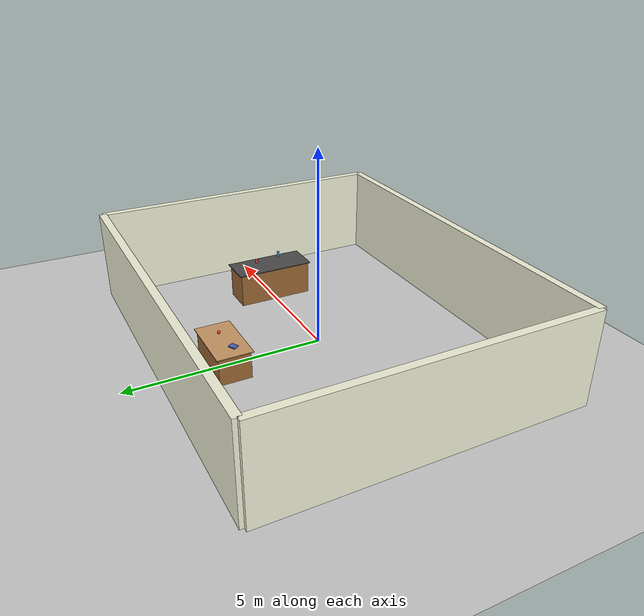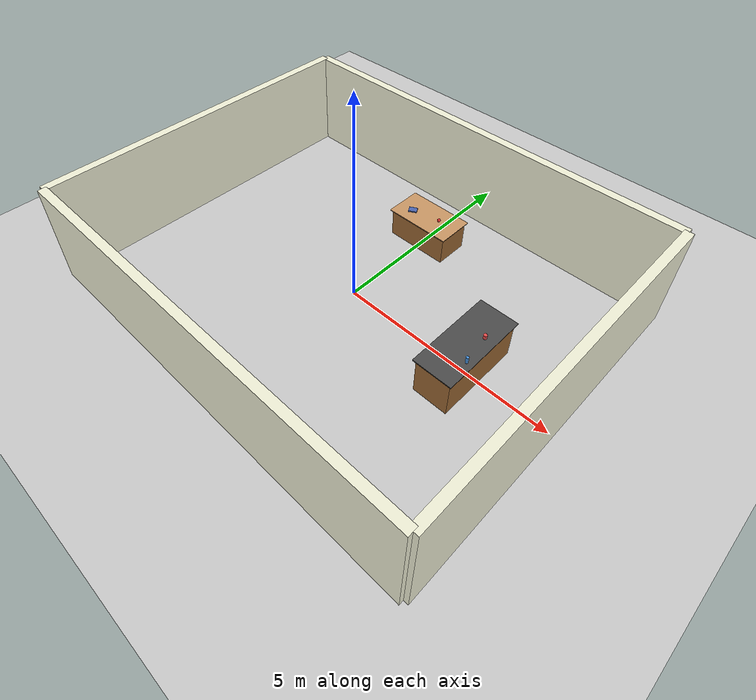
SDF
<?xml version="1.0" ?>
<sdf version="1.6">
  <world name="kitchen_world">

    <!-- Physics -->
    <physics name="default_physics" default="true" type="ode">
      <max_step_size>0.001</max_step_size>
      <real_time_factor>1.0</real_time_factor>
      <real_time_update_rate>1000</real_time_update_rate>
    </physics>

    <!-- Lighting -->
    <light name="sun" type="directional">
      <cast_shadows>true</cast_shadows>
      <pose>0 0 10 0 0 0</pose>
      <diffuse>0.8 0.8 0.8 1</diffuse>
      <specular>0.2 0.2 0.2 1</specular>
      <attenuation>
        <range>1000</range>
        <constant>0.9</constant>
        <linear>0.01</linear>
        <quadratic>0.001</quadratic>
      </attenuation>
      <direction>-0.5 0.1 -0.9</direction>
    </light>

    <!-- Ambient lighting -->
    <light name="ambient_light" type="ambient">
      <diffuse>0.4 0.4 0.4 1</diffuse>
    </light>

    <!-- Ground Plane -->
    <model name="ground_plane">
      <static>true</static>
      <link name="link">
        <collision name="collision">
          <geometry>
            <plane>
              <normal>0 0 1</normal>
              <size>100 100</size>
            </plane>
          </geometry>
          <surface>
            <friction>
              <ode>
                <mu>100</mu>
                <mu2>50</mu2>
              </ode>
            </friction>
          </surface>
        </collision>
        <visual name="visual">
          <geometry>
            <plane>
              <normal>0 0 1</normal>
              <size>100 100</size>
            </plane>
          </geometry>
          <material>
            <ambient>0.8 0.8 0.8 1</ambient>
            <diffuse>0.8 0.8 0.8 1</diffuse>
            <specular>0.8 0.8 0.8 1</specular>
          </material>
        </visual>
      </link>
    </model>

    <!-- Kitchen Counter -->
    <model name="kitchen_counter">
      <static>true</static>
      <pose>3.0 0 0.45 0 0 0</pose>
      <link name="link">
        <collision name="collision">
          <geometry>
            <box>
              <size>0.8 2.0 0.9</size>
            </box>
          </geometry>
        </collision>
        <visual name="visual">
          <geometry>
            <box>
              <size>0.8 2.0 0.9</size>
            </box>
          </geometry>
          <material>
            <ambient>0.6 0.4 0.2 1</ambient>
            <diffuse>0.6 0.4 0.2 1</diffuse>
          </material>
        </visual>
      </link>
    </model>

    <!-- Kitchen Countertop (surface) -->
    <model name="kitchen_countertop">
      <static>true</static>
      <pose>3.0 0 0.91 0 0 0</pose>
      <link name="link">
        <collision name="collision">
          <geometry>
            <box>
              <size>0.9 2.1 0.02</size>
            </box>
          </geometry>
        </collision>
        <visual name="visual">
          <geometry>
            <box>
              <size>0.9 2.1 0.02</size>
            </box>
          </geometry>
          <material>
            <ambient>0.2 0.2 0.2 1</ambient>
            <diffuse>0.3 0.3 0.3 1</diffuse>
          </material>
        </visual>
      </link>
    </model>

    <!-- Table -->
    <model name="table">
      <static>true</static>
      <pose>0 2.5 0.35 0 0 0</pose>
      <link name="link">
        <collision name="collision">
          <geometry>
            <box>
              <size>1.5 0.8 0.7</size>
            </box>
          </geometry>
        </collision>
        <visual name="visual">
          <geometry>
            <box>
              <size>1.5 0.8 0.7</size>
            </box>
          </geometry>
          <material>
            <ambient>0.5 0.3 0.1 1</ambient>
            <diffuse>0.6 0.4 0.2 1</diffuse>
          </material>
        </visual>
      </link>
    </model>

    <!-- Table Surface -->
    <model name="table_surface">
      <static>true</static>
      <pose>0 2.5 0.71 0 0 0</pose>
      <link name="link">
        <collision name="collision">
          <geometry>
            <box>
              <size>1.6 0.9 0.02</size>
            </box>
          </geometry>
        </collision>
        <visual name="visual">
          <geometry>
            <box>
              <size>1.6 0.9 0.02</size>
            </box>
          </geometry>
          <material>
            <ambient>0.7 0.5 0.3 1</ambient>
            <diffuse>0.8 0.6 0.4 1</diffuse>
          </material>
        </visual>
      </link>
    </model>

    <!-- Mug (on kitchen counter) -->
    <model name="mug">
      <pose>3.2 0.3 0.97 0 0 0</pose>
      <link name="link">
        <inertial>
          <mass>0.3</mass>
          <inertia>
            <ixx>0.0001</ixx>
            <iyy>0.0001</iyy>
            <izz>0.0001</izz>
          </inertia>
        </inertial>
        <collision name="collision">
          <geometry>
            <cylinder>
              <radius>0.04</radius>
              <length>0.10</length>
            </cylinder>
          </geometry>
        </collision>
        <visual name="visual">
          <geometry>
            <cylinder>
              <radius>0.04</radius>
              <length>0.10</length>
            </cylinder>
          </geometry>
          <material>
            <ambient>0.8 0.2 0.2 1</ambient>
            <diffuse>0.9 0.3 0.3 1</diffuse>
          </material>
        </visual>
      </link>
    </model>

    <!-- Bottle (on kitchen counter) -->
    <model name="bottle">
      <pose>3.3 -0.4 0.98 0 0 0</pose>
      <link name="link">
        <inertial>
          <mass>0.5</mass>
          <inertia>
            <ixx>0.0002</ixx>
            <iyy>0.0002</iyy>
            <izz>0.0001</izz>
          </inertia>
        </inertial>
        <collision name="collision">
          <geometry>
            <cylinder>
              <radius>0.03</radius>
              <length>0.20</length>
            </cylinder>
          </geometry>
        </collision>
        <visual name="visual">
          <geometry>
            <cylinder>
              <radius>0.03</radius>
              <length>0.20</length>
            </cylinder>
          </geometry>
          <material>
            <ambient>0.2 0.5 0.8 1</ambient>
            <diffuse>0.3 0.6 0.9 1</diffuse>
          </material>
        </visual>
      </link>
    </model>

    <!-- Apple (on table) -->
    <model name="apple">
      <pose>0.3 2.5 0.77 0 0 0</pose>
      <link name="link">
        <inertial>
          <mass>0.2</mass>
          <inertia>
            <ixx>0.00008</ixx>
            <iyy>0.00008</iyy>
            <izz>0.00008</izz>
          </inertia>
        </inertial>
        <collision name="collision">
          <geometry>
            <sphere>
              <radius>0.04</radius>
            </sphere>
          </geometry>
        </collision>
        <visual name="visual">
          <geometry>
            <sphere>
              <radius>0.04</radius>
            </sphere>
          </geometry>
          <material>
            <ambient>0.8 0.1 0.1 1</ambient>
            <diffuse>0.9 0.2 0.2 1</diffuse>
          </material>
        </visual>
      </link>
    </model>

    <!-- Book (on table) -->
    <model name="book">
      <pose>-0.4 2.4 0.74 0 0 0.5</pose>
      <link name="link">
        <inertial>
          <mass>0.5</mass>
          <inertia>
            <ixx>0.0003</ixx>
            <iyy>0.0002</iyy>
            <izz>0.0001</izz>
          </inertia>
        </inertial>
        <collision name="collision">
          <geometry>
            <box>
              <size>0.20 0.15 0.03</size>
            </box>
          </geometry>
        </collision>
        <visual name="visual">
          <geometry>
            <box>
              <size>0.20 0.15 0.03</size>
            </box>
          </geometry>
          <material>
            <ambient>0.2 0.3 0.6 1</ambient>
            <diffuse>0.3 0.4 0.7 1</diffuse>
          </material>
        </visual>
      </link>
    </model>

    <!-- Walls for navigation constraints -->
    <!-- North wall -->
    <model name="wall_north">
      <static>true</static>
      <pose>0 4 1.2 0 0 0</pose>
      <link name="link">
        <collision name="collision">
          <geometry>
            <box>
              <size>10 0.2 2.4</size>
            </box>
          </geometry>
        </collision>
        <visual name="visual">
          <geometry>
            <box>
              <size>10 0.2 2.4</size>
            </box>
          </geometry>
          <material>
            <ambient>0.9 0.9 0.8 1</ambient>
            <diffuse>0.95 0.95 0.85 1</diffuse>
          </material>
        </visual>
      </link>
    </model>

    <!-- South wall -->
    <model name="wall_south">
      <static>true</static>
      <pose>0 -4 1.2 0 0 0</pose>
      <link name="link">
        <collision name="collision">
          <geometry>
            <box>
              <size>10 0.2 2.4</size>
            </box>
          </geometry>
        </collision>
        <visual name="visual">
          <geometry>
            <box>
              <size>10 0.2 2.4</size>
            </box>
          </geometry>
          <material>
            <ambient>0.9 0.9 0.8 1</ambient>
            <diffuse>0.95 0.95 0.85 1</diffuse>
          </material>
        </visual>
      </link>
    </model>

    <!-- East wall -->
    <model name="wall_east">
      <static>true</static>
      <pose>5 0 1.2 0 0 0</pose>
      <link name="link">
        <collision name="collision">
          <geometry>
            <box>
              <size>0.2 8 2.4</size>
            </box>
          </geometry>
        </collision>
        <visual name="visual">
          <geometry>
            <box>
              <size>0.2 8 2.4</size>
            </box>
          </geometry>
          <material>
            <ambient>0.9 0.9 0.8 1</ambient>
            <diffuse>0.95 0.95 0.85 1</diffuse>
          </material>
        </visual>
      </link>
    </model>

    <!-- West wall -->
    <model name="wall_west">
      <static>true</static>
      <pose>-5 0 1.2 0 0 0</pose>
      <link name="link">
        <collision name="collision">
          <geometry>
            <box>
              <size>0.2 8 2.4</size>
            </box>
          </geometry>
        </collision>
        <visual name="visual">
          <geometry>
            <box>
              <size>0.2 8 2.4</size>
            </box>
          </geometry>
          <material>
            <ambient>0.9 0.9 0.8 1</ambient>
            <diffuse>0.95 0.95 0.85 1</diffuse>
          </material>
        </visual>
      </link>
    </model>

    <!-- Scene setup -->
    <scene>
      <ambient>0.4 0.4 0.4 1</ambient>
      <background>0.7 0.7 0.7 1</background>
      <shadows>1</shadows>
    </scene>

    <!-- GUI configuration -->
    <gui fullscreen='0'>
      <camera name='user_camera'>
        <pose>-3 -3 3 0 0.4 0.8</pose>
        <view_controller>orbit</view_controller>
        <projection_type>perspective</projection_type>
      </camera>
    </gui>

  </world>
</sdf>
